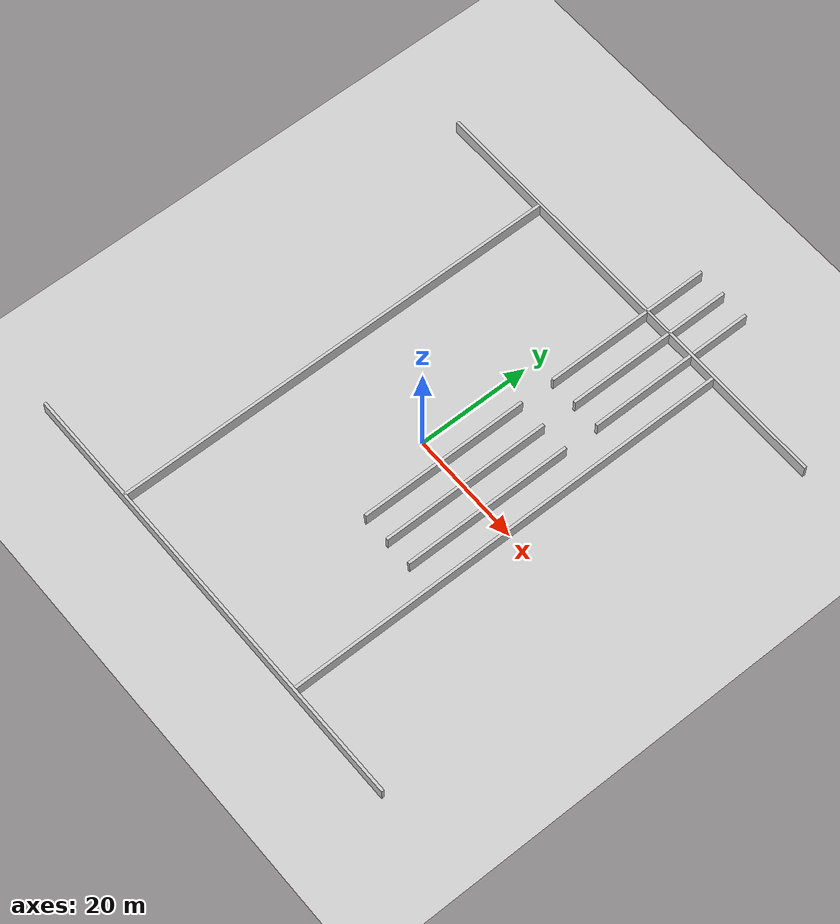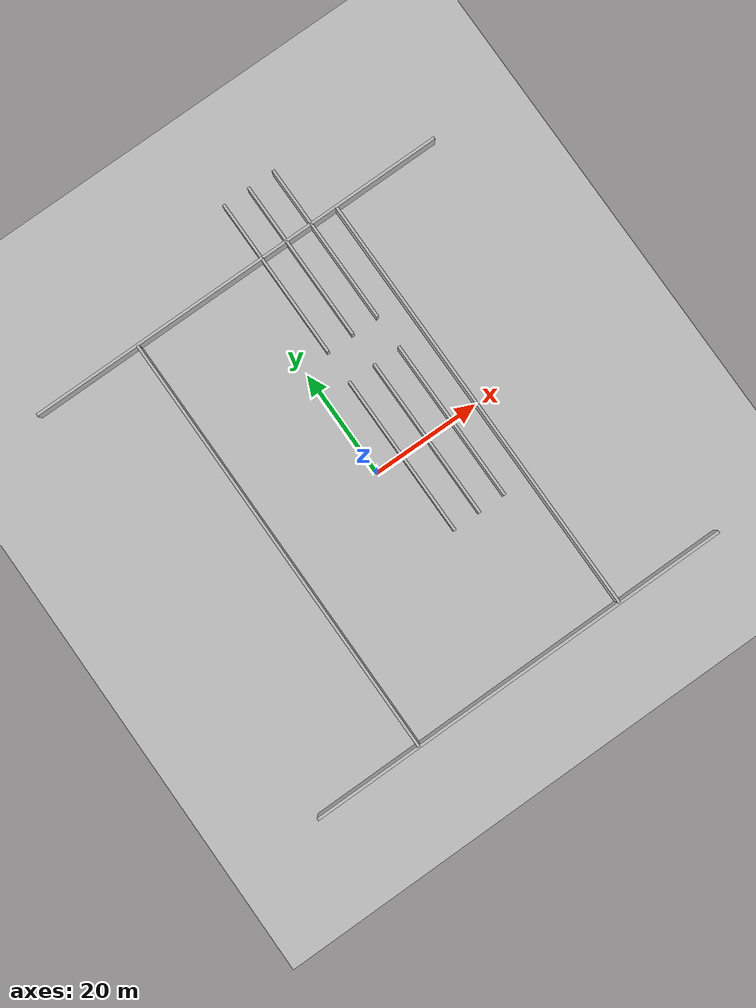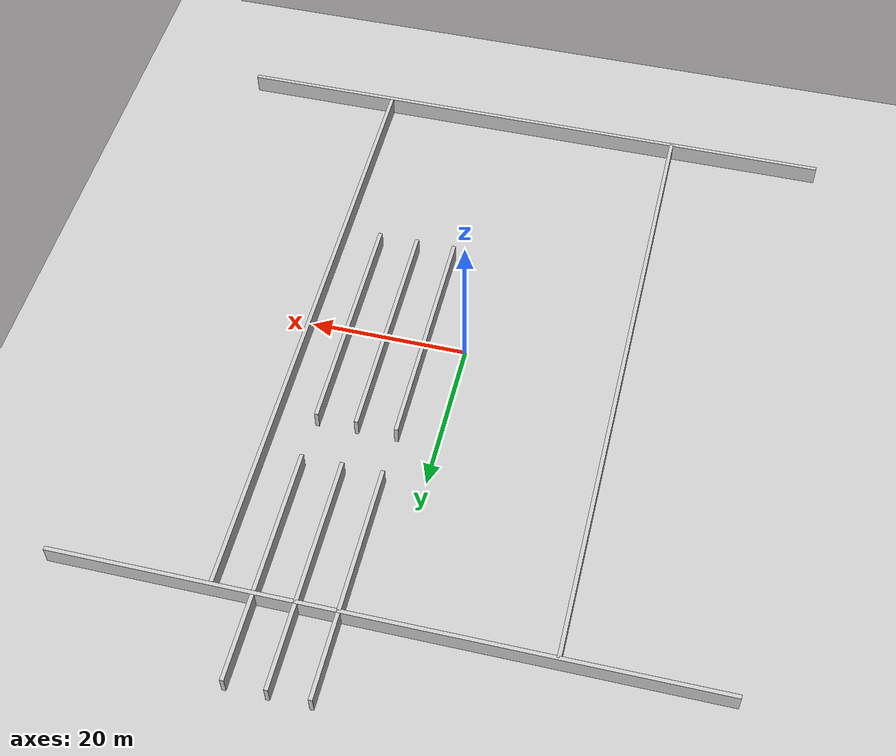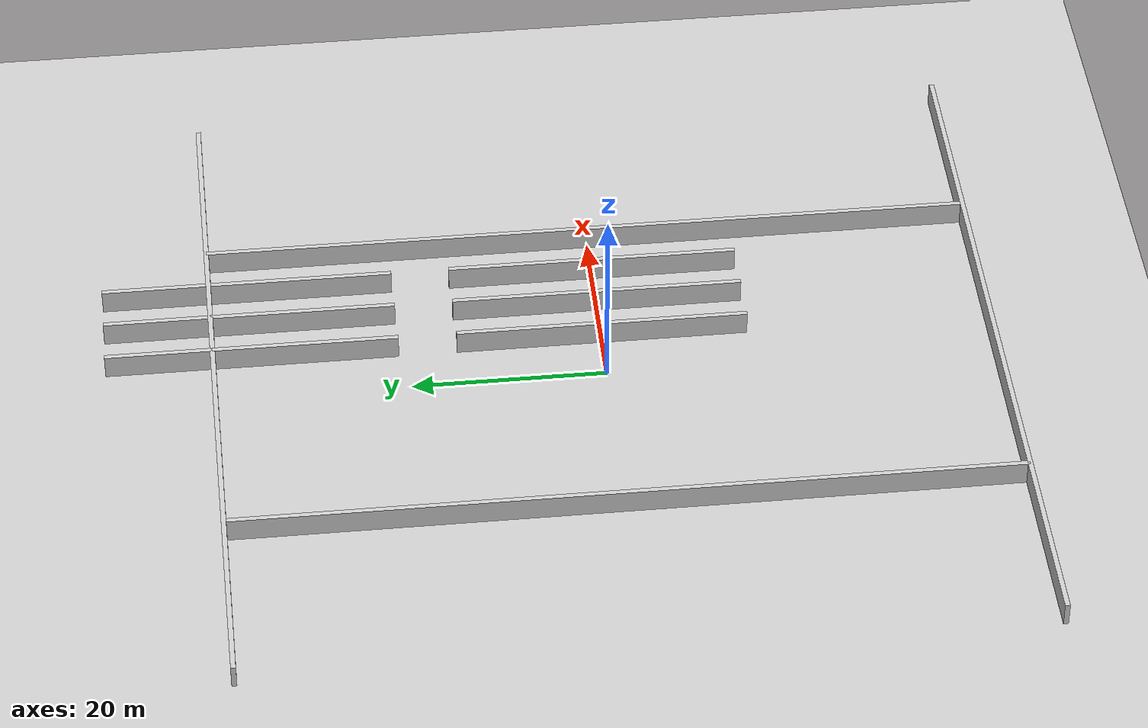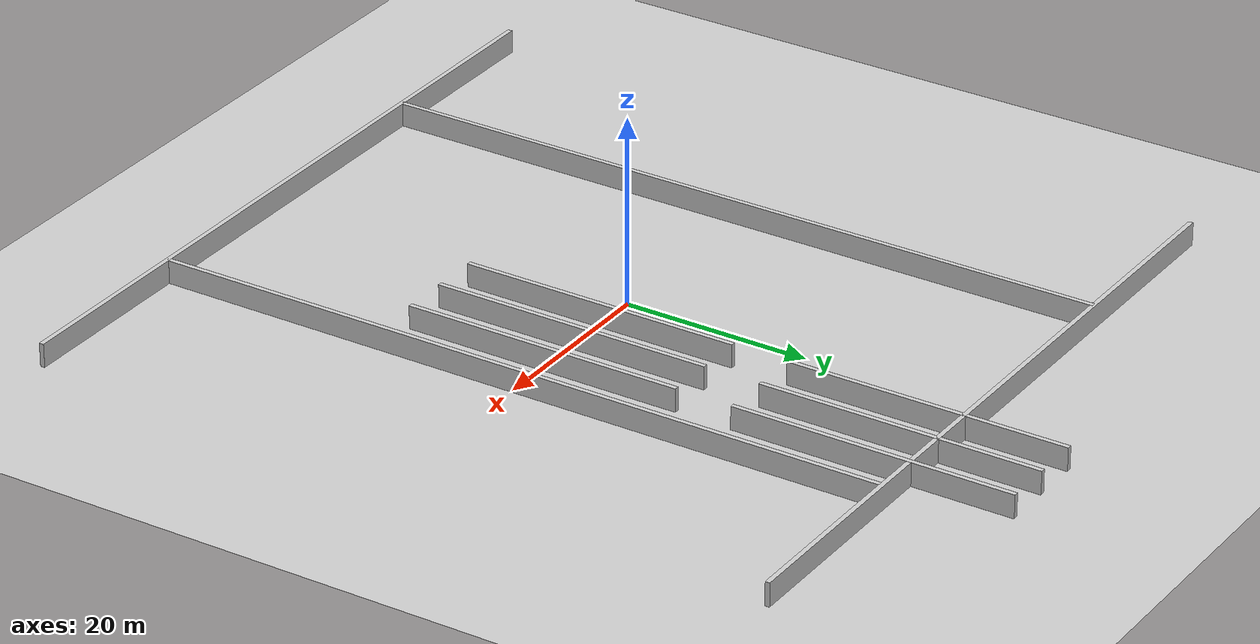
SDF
<?xml version="1.0" ?>
<sdf version="1.7">
    <world name="empty_world">
        <!-- First set of walls -->
        <!-- First wall at x = 5, y = 0 (vertical) -->
        <model name="wall_1">
            <static>true</static>
            <link name="link">
                <collision name="collision">
                    <geometry>
                        <box>
                            <size>30 0.5 2.5</size> <!-- Length, Width, Height -->
                        </box>
                    </geometry>
                </collision>
                <visual name="visual">
                    <geometry>
                        <box>
                            <size>30 0.5 2.5</size>
                        </box>
                    </geometry>
                    <material>
                        <ambient>0.8 0.8 0.8 1</ambient>
                        <diffuse>0.8 0.8 0.8 1</diffuse>
                    </material>
                </visual>
            </link>
            <pose>5 0 1.25 0 0 1.5708</pose> <!-- Wall at x = 5, rotated 90 degrees -->
        </model>

        <!-- Second wall at x = 10, y = 0 (vertical) -->
        <model name="wall_2">
            <static>true</static>
            <link name="link">
                <collision name="collision">
                    <geometry>
                        <box>
                            <size>30 0.5 2.5</size>
                        </box>
                    </geometry>
                </collision>
                <visual name="visual">
                    <geometry>
                        <box>
                            <size>30 0.5 2.5</size>
                        </box>
                    </geometry>
                    <material>
                        <ambient>0.8 0.8 0.8 1</ambient>
                        <diffuse>0.8 0.8 0.8 1</diffuse>
                    </material>
                </visual>
            </link>
            <pose>10 0 1.25 0 0 1.5708</pose> <!-- Wall at x = 10, rotated 90 degrees -->
        </model>

        <!-- Third wall at x = 20, y = 0 (vertical) -->
        <model name="wall_3">
            <static>true</static>
            <link name="link">
                <collision name="collision">
                    <geometry>
                        <box>
                            <size>30 0.5 2.5</size>
                        </box>
                    </geometry>
                </collision>
                <visual name="visual">
                    <geometry>
                        <box>
                            <size>30 0.5 2.5</size>
                        </box>
                    </geometry>
                    <material>
                        <ambient>0.8 0.8 0.8 1</ambient>
                        <diffuse>0.8 0.8 0.8 1</diffuse>
                    </material>
                </visual>
            </link>
            <pose>15 0 1.25 0 0 1.5708</pose> <!-- Wall at x = 20, rotated 90 degrees -->
        </model>

        <!-- Second set of walls, shifted by 2 meters along the y-axis -->
        <!-- Fourth wall at x = 5, y = 2 -->
        <model name="wall_4">
            <static>true</static>
            <link name="link">
                <collision name="collision">
                    <geometry>
                        <box>
                            <size>30 0.5 2.5</size> <!-- Length, Width, Height -->
                        </box>
                    </geometry>
                </collision>
                <visual name="visual">
                    <geometry>
                        <box>
                            <size>30 0.5 2.5</size>
                        </box>
                    </geometry>
                    <material>
                        <ambient>0.8 0.8 0.8 1</ambient>
                        <diffuse>0.8 0.8 0.8 1</diffuse>
                    </material>
                </visual>
            </link>
            <pose>5 36 1.25 0 0 1.5708</pose> <!-- Wall at x = 5, y = 2, rotated 90 degrees -->
        </model>

        <!-- Fifth wall at x = 10, y = 2 -->
        <model name="wall_5">
            <static>true</static>
            <link name="link">
                <collision name="collision">
                    <geometry>
                        <box>
                            <size>30 0.5 2.5</size>
                        </box>
                    </geometry>
                </collision>
                <visual name="visual">
                    <geometry>
                        <box>
                            <size>30 0.5 2.5</size>
                        </box>
                    </geometry>
                    <material>
                        <ambient>0.8 0.8 0.8 1</ambient>
                        <diffuse>0.8 0.8 0.8 1</diffuse>
                    </material>
                </visual>
            </link>
            <pose>10 36 1.25 0 0 1.5708</pose> <!-- Wall at x = 10, y = 2, rotated 90 degrees -->
        </model>

        <!-- Sixth wall at x = 20, y = 2 -->
        <model name="wall_6">
            <static>true</static>
            <link name="link">
                <collision name="collision">
                    <geometry>
                        <box>
                            <size>30 0.5 2.5</size>
                        </box>
                    </geometry>
                </collision>
                <visual name="visual">
                    <geometry>
                        <box>
                            <size>30 0.5 2.5</size>
                        </box>
                    </geometry>
                    <material>
                        <ambient>0.8 0.8 0.8 1</ambient>
                        <diffuse>0.8 0.8 0.8 1</diffuse>
                    </material>
                </visual>
            </link>
            <pose>15 36 1.25 0 0 1.5708</pose> <!-- Wall at x = 20, y = 2, rotated 90 degrees -->
        </model>

        <model name="front_wall">
            <static>true</static>
            <link name="link">
                <collision name="collision">
                    <geometry>
                        <box>
                            <size>80 0.5 2.5</size> <!-- Wall size 80x0.5x2.5 -->
                        </box>
                    </geometry>
                </collision>
                <visual name="visual">
                    <geometry>
                        <box>
                            <size>80 0.5 2.5</size>
                        </box>
                    </geometry>
                    <material>
                        <ambient>0.8 0.8 0.8 1</ambient>
                        <diffuse>0.8 0.8 0.8 1</diffuse>
                    </material>
                </visual>
            </link>
            <pose>0 -40 1.25 0 0 0</pose> <!-- Front wall at y = -40 -->
        </model>

        <!-- Back wall -->
        <model name="back_wall">
            <static>true</static>
            <link name="link">
                <collision name="collision">
                    <geometry>
                        <box>
                            <size>80 0.5 2.5</size>
                        </box>
                    </geometry>
                </collision>
                <visual name="visual">
                    <geometry>
                        <box>
                            <size>80 0.5 2.5</size>
                        </box>
                    </geometry>
                    <material>
                        <ambient>0.8 0.8 0.8 1</ambient>
                        <diffuse>0.8 0.8 0.8 1</diffuse>
                    </material>
                </visual>
            </link>
            <pose>0 40 1.25 0 0 0</pose> <!-- Back wall at y = 40 -->
        </model>

        <!-- Left wall -->
        <model name="left_wall">
            <static>true</static>
            <link name="link">
                <collision name="collision">
                    <geometry>
                        <box>
                            <size>0.5 80 2.5</size> <!-- Wall size 0.5x80x2.5 -->
                        </box>
                    </geometry>
                </collision>
                <visual name="visual">
                    <geometry>
                        <box>
                            <size>0.5 80 2.5</size>
                        </box>
                    </geometry>
                    <material>
                        <ambient>0.8 0.8 0.8 1</ambient>
                        <diffuse>0.8 0.8 0.8 1</diffuse>
                    </material>
                </visual>
            </link>
            <pose>-20 0 1.25 0 0 0</pose> <!-- Left wall at x = -40 -->
        </model>

        <!-- Right wall -->
        <model name="right_wall">
            <static>true</static>
            <link name="link">
                <collision name="collision">
                    <geometry>
                        <box>
                            <size>0.5 80 2.5</size>
                        </box>
                    </geometry>
                </collision>
                <visual name="visual">
                    <geometry>
                        <box>
                            <size>0.5 80 2.5</size>
                        </box>
                    </geometry>
                    <material>
                        <ambient>0.8 0.8 0.8 1</ambient>
                        <diffuse>0.8 0.8 0.8 1</diffuse>
                    </material>
                </visual>
            </link>
            <pose>20 0 1.25 0 0 0</pose> <!-- Right wall at x = 40 -->
        </model>

        <!-- Lighting -->
        <light type="directional" name="sun">
            <cast_shadows>true</cast_shadows>
            <pose>0 0 10 0 0 0</pose>
            <diffuse>0.8 0.8 0.8 1</diffuse>
            <specular>0.2 0.2 0.2 1</specular>
            <attenuation>
                <range>1000</range>
                <constant>0.9</constant>
                <linear>0.01</linear>
                <quadratic>0.001</quadratic>
            </attenuation>
            <direction>-0.5 0.1 -0.9</direction>
        </light>

        <!-- Ground plane -->
        <model name="ground_plane">
            <static>true</static>
            <link name="link">
                <collision name="collision">
                    <geometry>
                        <plane>
                            <normal>0 0 1</normal>
                        </plane>
                    </geometry>
                </collision>
                <visual name="visual">
                    <geometry>
                        <plane>
                            <normal>0 0 1</normal>
                            <size>100 100</size>
                        </plane>
                    </geometry>
                    <material>
                        <ambient>0.8 0.8 0.8 1</ambient>
                        <diffuse>0.8 0.8 0.8 1</diffuse>
                        <specular>0.8 0.8 0.8 1</specular>
                    </material>
                </visual>
            </link>
        </model>
    </world>
</sdf>
